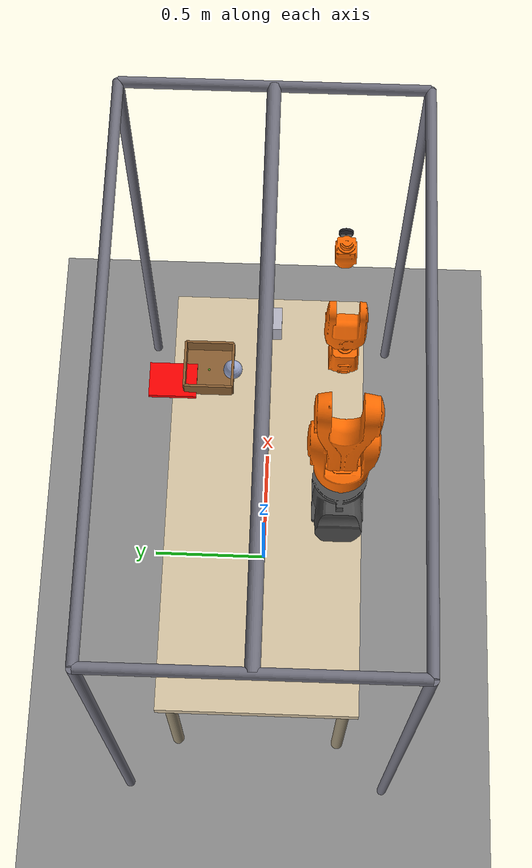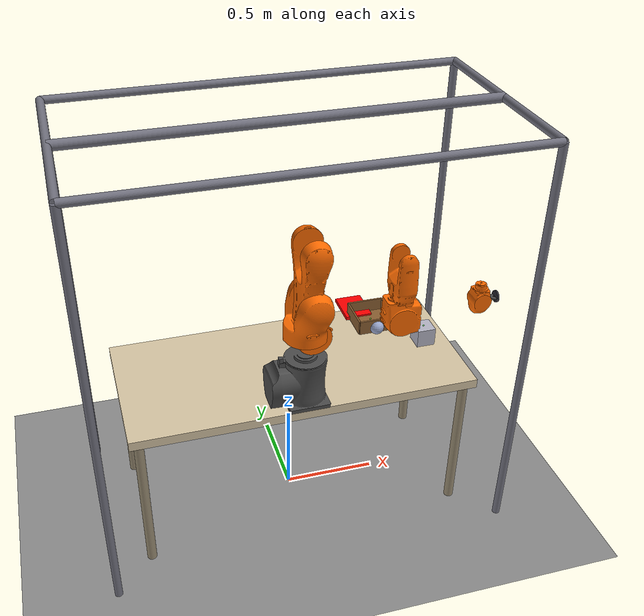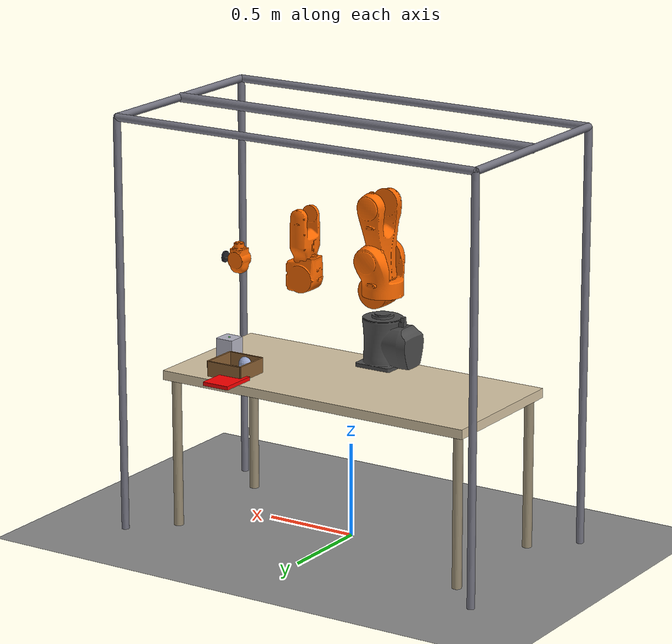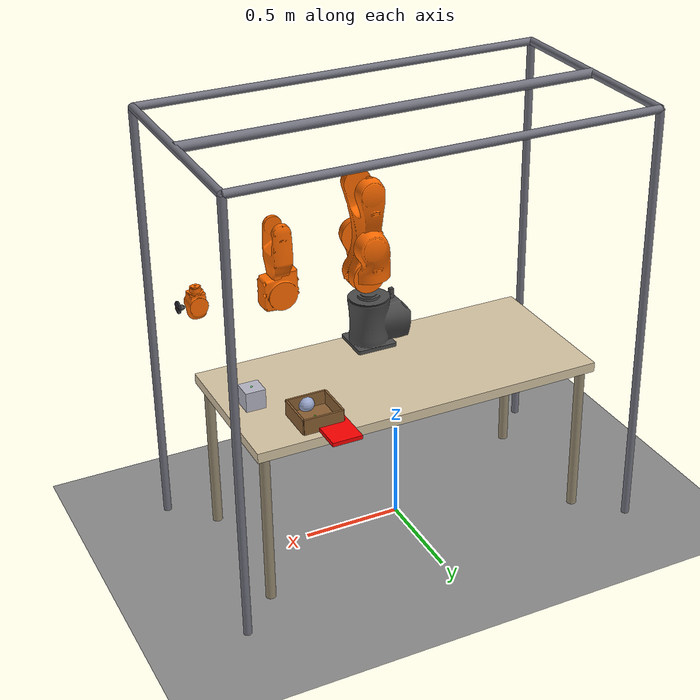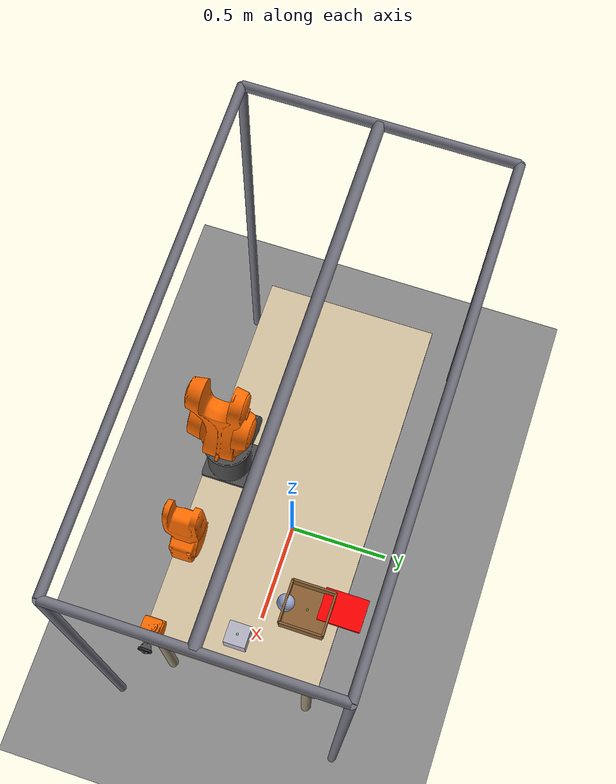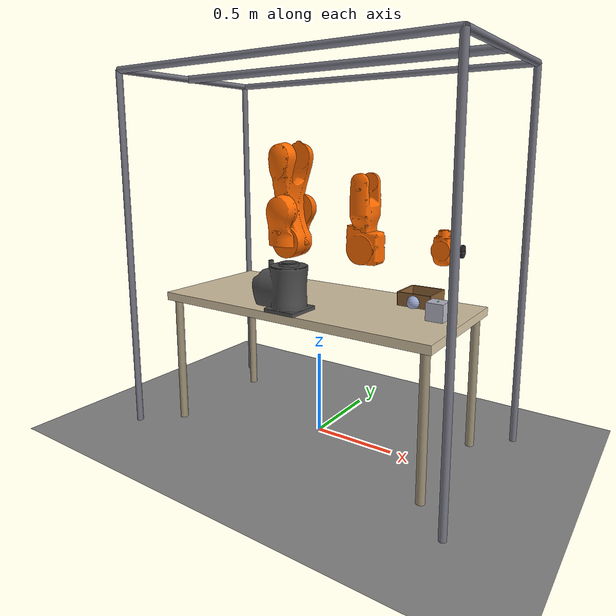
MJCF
<mujoco model="kuka_scene">

  <statistic center="0 0.1 0.9" extent="1.5" />

  <option timestep="0.001" gravity="0 0 -9.81" integrator="RK4" />

  <include file="includes/arm.xml" />
  <include file="includes/table.xml" />
  <include file="includes/lights.xml" />
  <include file="includes/objects.xml" />
  <include file="includes/cage.xml" />

  <visual>
    <global offwidth="1280" offheight="720" />

    <headlight ambient="0.15 0.15 0.15" diffuse="0.2 0.2 0.2" specular="0 0 0" />
  </visual>

  <worldbody>

    <geom name="floor" type="plane" size="5 5 0.1" rgba="0.55 0.55 0.55 1" condim="3" contype="2" conaffinity="3" />

  </worldbody>

  <sensor>

    <jointpos name="sensor_pos_A1" joint="joint_a1" />
    <jointpos name="sensor_pos_A2" joint="joint_a2" />
    <jointpos name="sensor_pos_A3" joint="joint_a3" />
    <jointpos name="sensor_pos_A4" joint="joint_a4" />
    <jointpos name="sensor_pos_A5" joint="joint_a5" />
    <jointpos name="sensor_pos_A6" joint="joint_a6" />

    <jointvel name="sensor_vel_A1" joint="joint_a1" />
    <jointvel name="sensor_vel_A2" joint="joint_a2" />
    <jointvel name="sensor_vel_A3" joint="joint_a3" />
    <jointvel name="sensor_vel_A4" joint="joint_a4" />
    <jointvel name="sensor_vel_A5" joint="joint_a5" />
    <jointvel name="sensor_vel_A6" joint="joint_a6" />

    <actuatorfrc name="sensor_torque_A1" actuator="act_a1" />
    <actuatorfrc name="sensor_torque_A2" actuator="act_a2" />
    <actuatorfrc name="sensor_torque_A3" actuator="act_a3" />
    <actuatorfrc name="sensor_torque_A4" actuator="act_a4" />
    <actuatorfrc name="sensor_torque_A5" actuator="act_a5" />
    <actuatorfrc name="sensor_torque_A6" actuator="act_a6" />

    <force name="sensor_ee_force" site="cup_contact_site" />
    <torque name="sensor_ee_torque" site="cup_contact_site" />

    <rangefinder name="sensor_proximity" site="cup_contact_site" />

    <touch name="sensor_em_touch" site="cup_contact_site" />
  </sensor>

</mujoco>

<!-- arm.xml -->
<mujoco>
  <compiler meshdir="../assets/urdf/meshes/" angle="radian" />

  <asset>
    <mesh name="base_link" content_type="model/stl" file="base_link.stl" />
    <mesh name="link_1" content_type="model/stl" file="link_1.stl" />
    <mesh name="link_2" content_type="model/stl" file="link_2.stl" />
    <mesh name="link_3" content_type="model/stl" file="link_3.stl" />
    <mesh name="link_4" content_type="model/stl" file="link_4.stl" />
    <mesh name="link_5" content_type="model/stl" file="link_5.stl" />
    <mesh name="link_6" content_type="model/stl" file="link_6.stl" />
  </asset>

  <worldbody>

    <body name="kuka_base" pos="0 -0.3 0.85">

      <geom type="mesh" rgba="0.3 0.3 0.3 1" mesh="base_link" contype="0" conaffinity="0" />

      <body name="link_1" pos="0 0 0.4">
        <joint name="joint_a1" pos="0 0 0" axis="0 0 -1" range="-2.96706 2.96706" limited="true" />
        <geom type="mesh" rgba="1 0.42 0 1" mesh="link_1" contype="1" conaffinity="2" />

        <body name="link_2" pos="0.025 0 0">
          <joint name="joint_a2" pos="0 0 0" axis="0 1 0" range="-3.31613 0.785398" limited="true" />
          <geom type="mesh" rgba="1 0.42 0 1" mesh="link_2" contype="1" conaffinity="2" />

          <body name="link_3" pos="0.455 0 0">
            <joint name="joint_a3" pos="0 0 0" axis="0 1 0" range="-2.0944 2.72271" limited="true" />
            <geom type="mesh" rgba="1 0.42 0 1" mesh="link_3" contype="1" conaffinity="2" />

            <body name="link_4" pos="0 0 0.035">
              <joint name="joint_a4" pos="0 0 0" axis="-1 0 0" range="-3.22886 3.22886" limited="true" />
              <geom type="mesh" rgba="1 0.42 0 1" mesh="link_4" contype="1" conaffinity="2" />

              <body name="link_5" pos="0.42 0 0">
                <joint name="joint_a5" pos="0 0 0" axis="0 1 0" range="-2.0944 2.0944" limited="true" />
                <geom type="mesh" rgba="1 0.42 0 1" mesh="link_5" contype="1" conaffinity="2" />

                <body name="link_6" pos="0.08 0 0">
                  <joint name="joint_a6" pos="0 0 0" axis="-1 0 0" range="-6.10865 6.10865" limited="true" />
                  <geom type="mesh" rgba="0.3 0.3 0.3 1" mesh="link_6" contype="1" conaffinity="2" />

                  <body name="suction_mount" pos="0.01 0 0">
  <joint name="cup_compliance" type="slide" axis="1 0 0" limited="true" range="-0.010 0" stiffness="800" damping="5" springref="0" />
  <body name="suction_pad">
    <geom name="cup_geom" type="cylinder" fromto="-0.005 0 0  0.005 0 0" size="0.03" rgba="0.15 0.15 0.18 1" margin="0.004" solref="0.02 1" solimp="0.9 0.95 0.001" contype="1" conaffinity="6" mass="0.05" />
    <site name="suction_tip_site" pos="0.006 0 0" euler="0 -90 0" size="0.005" rgba="1 0 0 0.5" />
    <camera name="cam_wrist" pos="-0.02 0 0.10" xyaxes="0 1 0 -0.342 0 -0.940" fovy="80" />
    <site name="cup_contact_site" pos="0.006 0 0" size="0.004" rgba="1 0.5 0 0" />
  </body>
</body></body>

              </body>
            </body>
          </body>
        </body>
      </body>

    </body>
  </worldbody>

  <actuator>

    <position name="act_a1" joint="joint_a1" kp="500" forcelimited="true" forcerange="-500 500" />
    <position name="act_a2" joint="joint_a2" kp="500" forcelimited="true" forcerange="-500 500" />
    <position name="act_a3" joint="joint_a3" kp="500" forcelimited="true" forcerange="-300 300" />
    <position name="act_a4" joint="joint_a4" kp="300" forcelimited="true" forcerange="-200 200" />
    <position name="act_a5" joint="joint_a5" kp="200" forcelimited="true" forcerange="-100 100" />
    <position name="act_a6" joint="joint_a6" kp="100" forcelimited="true" forcerange="-50  50" />
  <adhesion name="act_vacuum" body="suction_pad" ctrlrange="0 1" gain="40" /></actuator>

</mujoco>

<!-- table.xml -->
<mujoco>
  <asset>
    <material name="table_wood"
              rgba="0.85 0.78 0.65 1"
              specular="0.1"
              shininess="0.15"/>
    <material name="table_leg"
              rgba="0.6 0.55 0.45 1"
              specular="0.05"
              shininess="0.1"/>
  </asset>

  <worldbody>

    <!-- Table: fixed body (no joints) centred at origin -->
    <body name="table" pos="0 0 0">

      <!-- Tabletop slab: surface at Z=0.85, half-thickness 0.025 → centre 0.825 -->
      <geom name="tabletop"
            type="box"
            size="0.90 0.40 0.025"
            pos="0 0 0.825"
            material="table_wood"
            condim="3"
            contype="2" conaffinity="3"/>

      <!-- Four legs at corners (X ±0.85, Y ±0.35) -->
      <geom name="leg_fl"
            type="cylinder"
            size="0.025 0.4"
            pos=" 0.85  0.35 0.4"
            material="table_leg"/>
      <geom name="leg_fr"
            type="cylinder"
            size="0.025 0.4"
            pos=" 0.85 -0.35 0.4"
            material="table_leg"/>
      <geom name="leg_bl"
            type="cylinder"
            size="0.025 0.4"
            pos="-0.85  0.35 0.4"
            material="table_leg"/>
      <geom name="leg_br"
            type="cylinder"
            size="0.025 0.4"
            pos="-0.85 -0.35 0.4"
            material="table_leg"/>

    </body>

  </worldbody>
</mujoco>

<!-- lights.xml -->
<mujoco>
  <worldbody>

    <!-- Key light: overhead, casts shadows -->
    <light name="key"
           pos="0 0 4"
           dir="0 0 -1"
           diffuse="0.9 0.9 0.9"
           specular="0.3 0.3 0.3"
           directional="true"
           castshadow="true"/>

    <!-- Fill light: front-left, softens harsh shadows -->
    <light name="fill"
           pos="2 -2 3"
           dir="-0.5 0.5 -1"
           diffuse="0.45 0.45 0.45"
           specular="0 0 0"
           directional="true"
           castshadow="false"/>

  </worldbody>
</mujoco>

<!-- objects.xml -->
<mujoco>

  <asset>
    <material name="metal_box_mat" rgba="0.72 0.72 0.78 1" specular="0.6" shininess="0.4" />
    <material name="metal_sphere_mat" rgba="0.60 0.65 0.80 1" specular="0.7" shininess="0.5" />
    <material name="target_zone_mat" rgba="1.0 0.0 0.0 1" specular="0.05" shininess="0.1" />
  </asset>

  <worldbody>

    <body name="metal_box" pos="0.76 0 0.90">
      <freejoint name="box_freejoint" />

      <geom name="box_geom" type="box" size="0.05 0.05 0.05" mass="0.5" material="metal_box_mat" friction="0.8 0.005 0.0001" condim="6" contype="4" conaffinity="6" />

      <site name="box_top_site" pos="0 0 0.05" size="0.005" rgba="0 1 0 0.5" />
    </body>

    <body name="metal_sphere" pos="0.55 0.15 0.88">
      <freejoint name="sphere_freejoint" />

      <geom name="sphere_geom" type="sphere" size="0.04" mass="0.3" material="metal_sphere_mat" friction="0.8 0.005 0.0001" condim="6" contype="4" conaffinity="6" />

      <site name="sphere_top_site" pos="0 0 0.04" size="0.005" rgba="0 0.8 1 0.5" />
    </body>

    <body name="target_zone" pos="0.5 0.4 0.86">
      <geom name="target_geom" type="box" size="0.075 0.1 0.01" material="target_zone_mat" condim="3" contype="2" conaffinity="3" />

      <site name="target_touch_site" type="box" pos="0 0 0.01" size="0.075 0.1 0.002" rgba="1 1 0 0" />
    </body>

  <body name="bin" pos="0.55 0.25 0.85">
  <geom name="bin_floor" type="box" size="0.10 0.10 0.005" pos="0 0 0.005" rgba="0.55 0.38 0.20 1" contype="2" conaffinity="3" />
  <geom name="bin_wall_px" type="box" size="0.005 0.10 0.04" pos="0.10 0 0.04" rgba="0.55 0.38 0.20 1" contype="2" conaffinity="3" />
  <geom name="bin_wall_nx" type="box" size="0.005 0.10 0.04" pos="-0.10 0 0.04" rgba="0.55 0.38 0.20 1" contype="2" conaffinity="3" />
  <geom name="bin_wall_py" type="box" size="0.10 0.005 0.04" pos="0 0.10 0.04" rgba="0.55 0.38 0.20 1" contype="2" conaffinity="3" />
  <geom name="bin_wall_ny" type="box" size="0.10 0.005 0.04" pos="0 -0.10 0.04" rgba="0.55 0.38 0.20 1" contype="2" conaffinity="3" />
  <site name="bin_center" pos="0 0 0.02" size="0.005" rgba="0 1 0 0.4" />
</body></worldbody>

  <sensor>
    <touch name="target_touch_sensor" site="target_touch_site" />
  </sensor>

</mujoco>

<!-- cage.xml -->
<mujoco>
  <asset>
    <material name="cage_steel"
              rgba="0.45 0.45 0.50 1"
              specular="0.5"
              shininess="0.4"/>
    <material name="camera_housing"
              rgba="0.08 0.08 0.08 1"
              specular="0.25"
              shininess="0.3"/>
  </asset>

  <worldbody>

    <body name="cage" pos="0 0 0">

      <!-- ── 4 corner posts (round tube, radius=0.02 m) ─────────────── -->
      <geom name="post_fl" type="cylinder"
            fromto="-1.05  0.55 0  -1.05  0.55 2.2"
            size="0.02" material="cage_steel"
            contype="0" conaffinity="0"/>
      <geom name="post_fr" type="cylinder"
            fromto=" 1.05  0.55 0   1.05  0.55 2.2"
            size="0.02" material="cage_steel"
            contype="0" conaffinity="0"/>
      <geom name="post_bl" type="cylinder"
            fromto="-1.05 -0.55 0  -1.05 -0.55 2.2"
            size="0.02" material="cage_steel"
            contype="0" conaffinity="0"/>
      <geom name="post_br" type="cylinder"
            fromto=" 1.05 -0.55 0   1.05 -0.55 2.2"
            size="0.02" material="cage_steel"
            contype="0" conaffinity="0"/>

      <!-- ── Top perimeter frame ────────────────────────────────────── -->
      <geom name="rail_front" type="cylinder"
            fromto="-1.05  0.55 2.2   1.05  0.55 2.2"
            size="0.02" material="cage_steel"
            contype="0" conaffinity="0"/>
      <geom name="rail_back" type="cylinder"
            fromto="-1.05 -0.55 2.2   1.05 -0.55 2.2"
            size="0.02" material="cage_steel"
            contype="0" conaffinity="0"/>
      <geom name="rail_left" type="cylinder"
            fromto="-1.05 -0.55 2.2  -1.05  0.55 2.2"
            size="0.02" material="cage_steel"
            contype="0" conaffinity="0"/>
      <geom name="rail_right" type="cylinder"
            fromto=" 1.05 -0.55 2.2   1.05  0.55 2.2"
            size="0.02" material="cage_steel"
            contype="0" conaffinity="0"/>

      <!-- ── Camera-mount X-rail (Y=0 centre line, Z=2.2 m) ────────── -->
      <!-- Cameras hang from this rail; arm cannot reach this height.    -->
      <geom name="rail_cam_x" type="cylinder"
            fromto="-1.05 0 2.2   1.05 0 2.2"
            size="0.025" material="cage_steel"
            contype="0" conaffinity="0"/>

      <body name="cam_mount_overhead" pos="0.1 -0.05 2.0">
        <camera name="cam_overhead"
                pos="0 0 0"
                xyaxes="1 0 0  0 1 0"
                fovy="75"/>
      </body>

      <body name="cam_mount_side" pos="1.4 -0.3 1.35">
        <camera name="cam_side"
                pos="0 0 0"
                xyaxes="0 1 0  -0.306 0 0.952"
                fovy="65"/>
      </body>

    </body><!-- cage -->

  </worldbody>
</mujoco>
